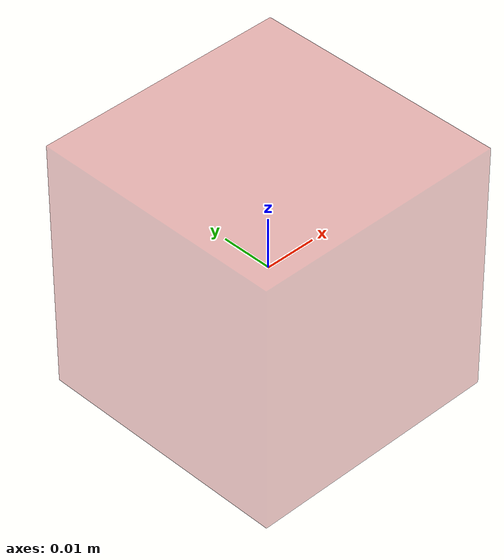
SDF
<?xml version='1.0'?>
<sdf version='1.6'>
  <model name='block_2in'>
    <link name='link'>
      <self_collide>0</self_collide>
      <kinematic>0</kinematic>
      <pose frame=''>0 0 0 0 0 0</pose>
      <visual name='visual'>
        <geometry>
          <box>
            <size>0.049 0.049 0.049</size>
          </box>
        </geometry>
        <material>
          <ambient>0.67 0.0 0.0 0.3</ambient>
        </material>
        <transparency>0</transparency>
      </visual>
      <gravity>0</gravity>
    </link>
  </model>
</sdf>
